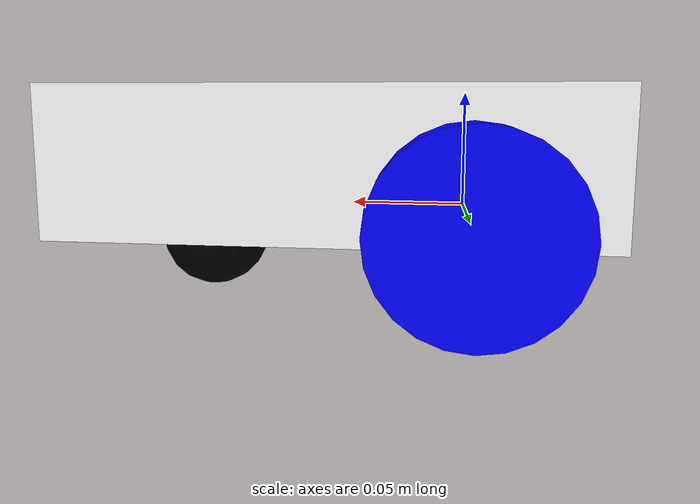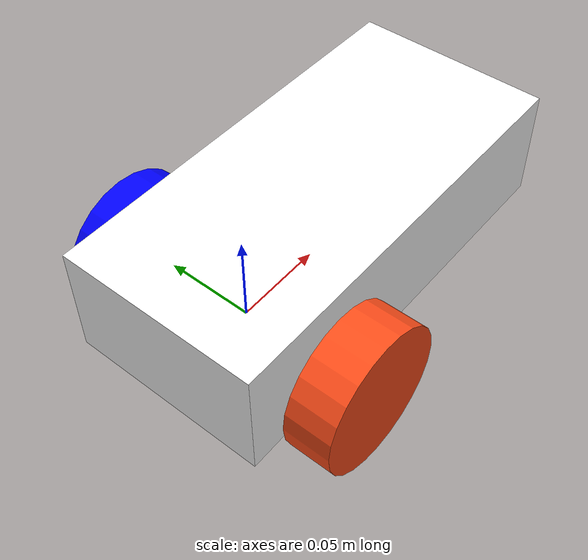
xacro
<?xml version="1.0"?>
<robot xmlns:xacro="http://www.ros.org/wiki/xacro"  name="robot">

    <xacro:include filename="inertial_macros.xacro"/>
    <!-- Car Dimensions -->
    <xacro:property name="chassis_length" value=".232"/>
    <xacro:property name="chassis_width" value=".111"/>
    <xacro:property name="chassis_height" value=".064"/>
    <xacro:property name="chassis_mass" value=".125"/>
    <xacro:property name="wheel_radius" value=".04"/>
    <xacro:property name="wheel_thickness" value=".026"/>
    <xacro:property name="wheel_mass" value=".05"/>
    <xacro:property name="wheel_offset_x" value=".058"/>
    <xacro:property name="wheel_offset_y" value=".07"/>
    <xacro:property name="wheel_offset_z" value=".01"/>
    <xacro:property name="caster_wheel_radius" value=".025"/>
    <xacro:property name="caster_wheel_mass" value=".01"/>
    <xacro:property name="caster_wheel_offset_x" value=".174"/>
    <xacro:property name="caster_wheel_offset_z" value="${wheel_offset_z - wheel_radius + caster_wheel_radius}"/>

    <material name="grey">
        <color rgba="0.2 0.2 0.2 1"/>
    </material>

    <material name="white">
        <color rgba="1 1 1 1"/>
    </material>

    <material name="orange">
        <color rgba="1 0.3 0.1 1"/>
    </material>

    <material name="blue">
        <color rgba="0 0 1 1"/>
    </material>

    <material name="black">
        <color rgba="0 0 0 1"/>
    </material>

    <link name="base_link">
    </link>

    <link name="odom">
    </link>

    <joint name="base_to_odom" type="fixed">
        <parent link="base_link"/>
        <child link="odom"/>
        <origin xyz="0 0 0"/>
    </joint>

    <!-- Chassis Link -->
    <joint name="chassis_joint" type="fixed">
        <parent link="base_link"/>
        <child link="chassis"/>
        <origin xyz="${-wheel_offset_x} 0 ${-wheel_offset_z}"/>
    </joint>

    <link name="chassis">
        <visual>
            <origin xyz="${chassis_length/2} 0 ${chassis_height/2}"/> <!--shift the wheels forward half the length of the box-->
            <geometry>
                <box size="${chassis_length} ${chassis_width} ${chassis_height}"/> <!--chassis is .232m x .111m x .0635m xyz-->
            </geometry>
            <material name="white"/>
        </visual>
        <collision>
            <origin xyz="${chassis_length/2} 0 ${chassis_height/2}"/>
            <geometry>
                <box size="${chassis_length} ${chassis_width} ${chassis_height}"/>
            </geometry>
        </collision>
        <xacro:inertial_box mass="${chassis_mass}" x="${chassis_length}" y="${chassis_width}" z="${chassis_height}">
            <origin xyz="${chassis_length/2} 0 ${chassis_height/2}" rpy="0 0 0"/>
        </xacro:inertial_box>
    </link>

    <gazebo reference="chassis">
        <material>Gazebo/White</material>
    </gazebo>

    <!-- Left Wheel -->

    <joint name="left_wheel_joint" type="continuous">
        <parent link="base_link"/>
        <child link="left_wheel"/>
        <origin xyz="0 ${wheel_offset_y} 0" rpy="-${pi/2} 0 0"/>
        <axis xyz="0 0 1"/>
    </joint>

    <link name="left_wheel">
        <visual>
            <geometry>
                <cylinder radius="${wheel_radius}" length="${wheel_thickness}"/>
            </geometry>
            <material name="blue"/>
        </visual>
        <collision>
            <geometry>
                <cylinder radius="${wheel_radius}" length="${wheel_thickness}"/>
                <!--sphere radius="${wheel_radius}"/-->
            </geometry>
        </collision>
        <xacro:inertial_cylinder mass="${wheel_mass}" length="${wheel_thickness}" radius="${wheel_radius}">
            <origin xyz="0 0 0" rpy="0 0 0"/>
        </xacro:inertial_cylinder>
    </link>

    <gazebo reference="left_wheel">
        <material>Gazebo/Blue</material>
        <mu1>0.8</mu1>
        <mu2>0.8</mu2>
        <minDepth>0.001</minDepth>
        <kp>1000000.0</kp>
        <kd>1.0</kd>
    </gazebo>

    <!-- Right Wheel -->

    <joint name="right_wheel_joint" type="continuous">
        <parent link="base_link"/>
        <child link="right_wheel"/>
        <origin xyz="0 ${-wheel_offset_y} 0" rpy="${pi/2} 0 0"/>
        <axis xyz="0 0 -1"/>
    </joint>

    <link name="right_wheel">
        <visual>
            <geometry>
                <cylinder radius="${wheel_radius}" length="${wheel_thickness}"/>
            </geometry>
            <material name="orange"/>
        </visual>
        <collision>
            <geometry>
                <cylinder radius="${wheel_radius}" length="${wheel_thickness}"/>
                <!--sphere radius="${wheel_radius}"/-->
            </geometry>
        </collision>
        <xacro:inertial_cylinder mass="${wheel_mass}" length="${wheel_thickness}" radius="${wheel_radius}">
            <origin xyz="0 0 0" rpy="0 0 0"/>
        </xacro:inertial_cylinder>
    </link>

    <gazebo reference="right_wheel">
        <material>Gazebo/Orange</material>
        <mu1>0.8</mu1>
        <mu2>0.8</mu2>
        <minDepth>0.001</minDepth>
        <kp>1000000.0</kp>
        <kd>1.0</kd>
    </gazebo>

    <!-- Caster Wheel Link -->
    <joint name="caster_wheel_joint" type="fixed">
        <parent link="chassis"/>
        <child link="caster_wheel"/>
        <origin xyz="${caster_wheel_offset_x} 0 ${caster_wheel_offset_z}"/>
    </joint>

    <link name="caster_wheel">
        <visual>
            <geometry>
                <sphere radius="${caster_wheel_radius}"/>
            </geometry>
            <material name="black"/>
        </visual>
        <collision>
            <geometry>
                <sphere radius="${caster_wheel_radius}"/>
            </geometry>
        </collision>
        <xacro:inertial_sphere mass="${caster_wheel_mass}" radius="${caster_wheel_radius}">
            <origin xyz="0 0 0" rpy="0 0 0"/>
        </xacro:inertial_sphere>
    </link>

    <gazebo reference="caster_wheel">
        <material>Gazebo/Black</material>
        <mu1 value="0.001"/>
        <mu2 value="0.001"/>
    </gazebo>
</robot>
